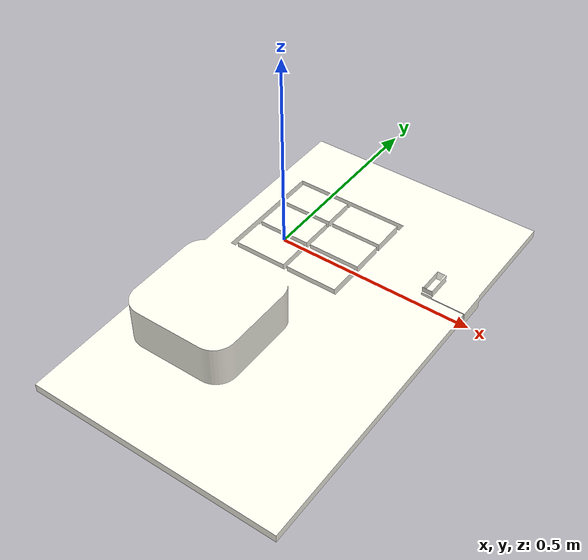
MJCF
<mujoco model="bread_picking">
  <compiler angle="radian" meshdir="." autolimits="true" />

  <asset>
    <mesh name="bread_pikcing_scene_visual" file="bread_picking_scene.STL" scale="0.001 0.001 0.001"/>
  </asset>

  <option sdf_iterations="15" sdf_initpoints="100"/>
  <worldbody>
    <body name="bread_pikcing_scene">
      <geom type="mesh"
            pos="0.5000 0.3023 1.0300"
            quat="0 0.7071068 -0.7071068 0"
            mesh="bread_pikcing_scene_visual"
            rgba="1 0.99 0.94 1"
            friction="0.5 0.005 0.0001"
            solref="0.001 1"
            solimp="0.99 0.99 0.001"
            contype="0"
            conaffinity="0"/>
    </body>
  </worldbody>
</mujoco>
